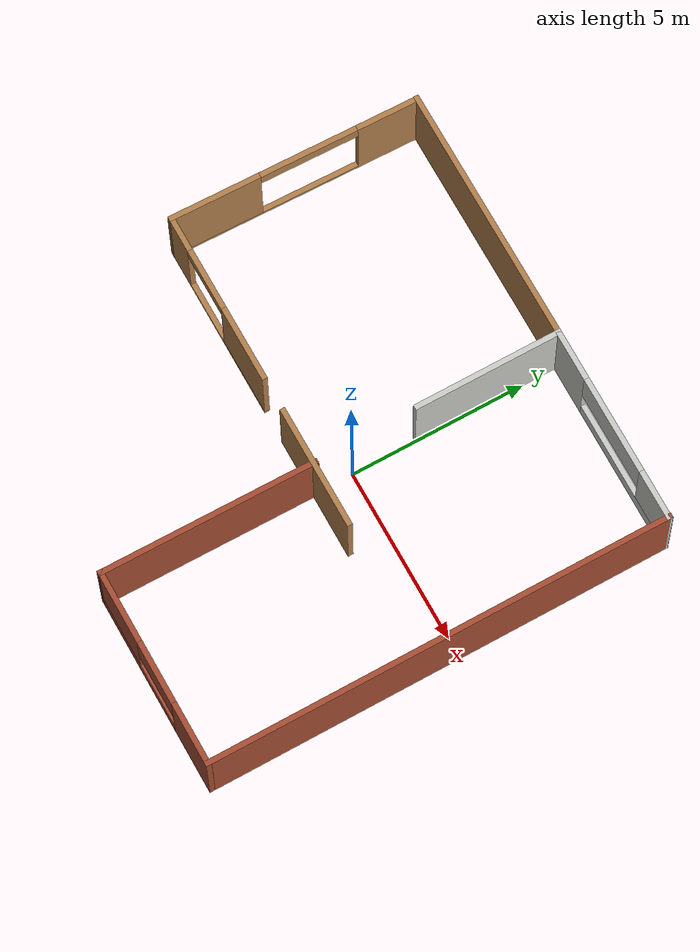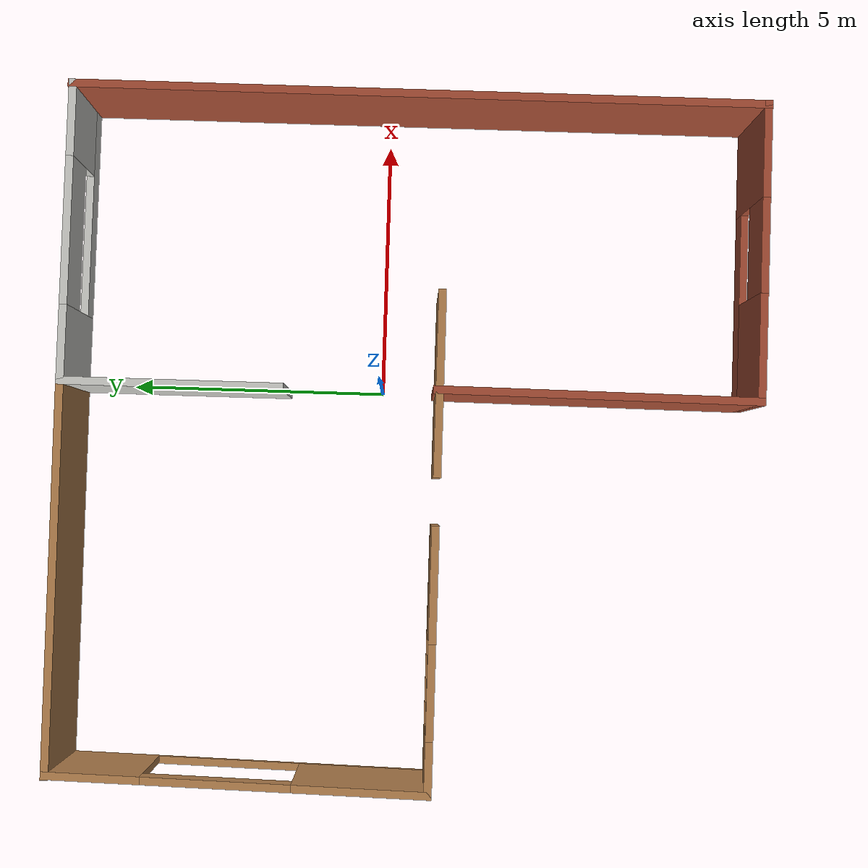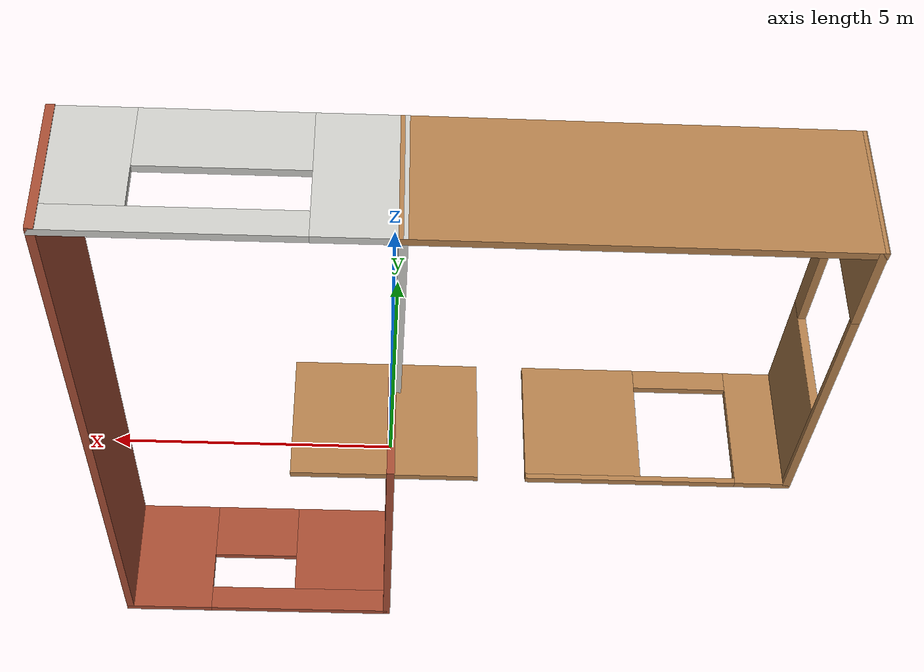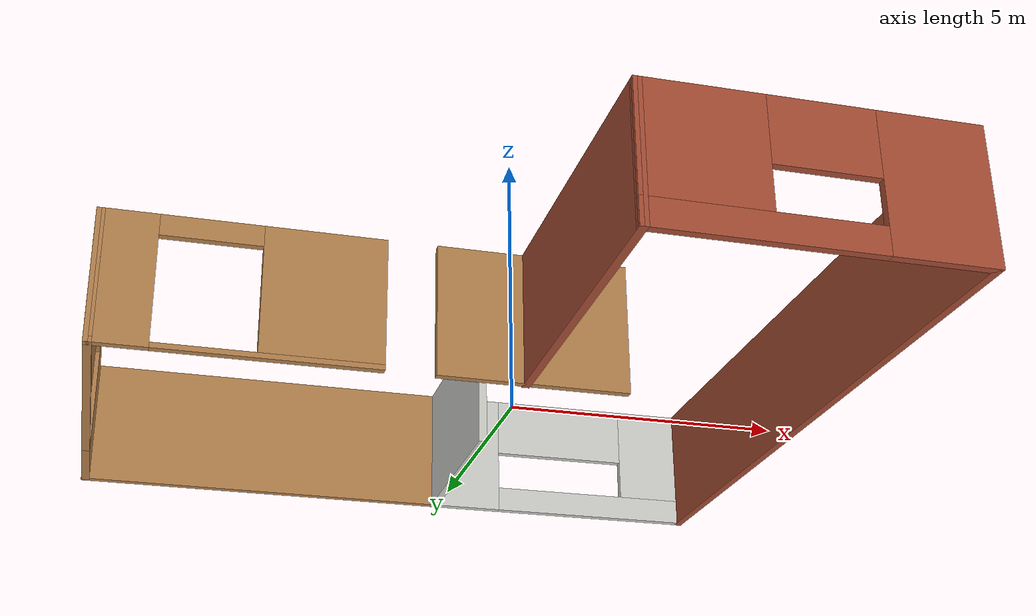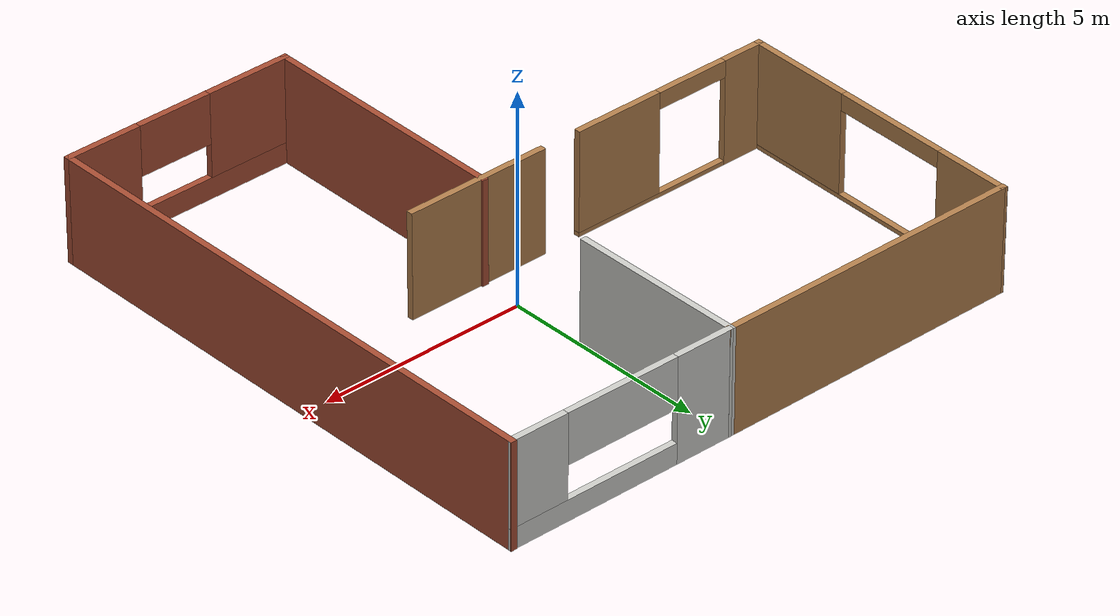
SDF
<?xml version='1.0'?>
<sdf version='1.6'>
  <model name='three_rooms'>
    <pose frame=''>-1.01044 -0.54871 0 0 -0 0</pose>
    <link name='Wall_1'>
      <collision name='Wall_1_Collision'>
        <geometry>
          <box>
            <size>7.5 0.15 2.5</size>
          </box>
        </geometry>
        <pose frame=''>0 0 1.25 0 -0 0</pose>
      </collision>
      <visual name='Wall_1_Visual'>
        <pose frame=''>0 0 1.25 0 -0 0</pose>
        <geometry>
          <box>
            <size>7.5 0.15 2.5</size>
          </box>
        </geometry>
        <material>
          <script>
            <uri>file://media/materials/scripts/gazebo.material</uri>
            <name>Gazebo/Wood</name>
          </script>
          <ambient>1 1 1 1</ambient>
        </material>
        <meta>
          <layer>0</layer>
        </meta>
      </visual>
      <pose frame=''>-2.72664 6.55831 0 0 -0 0</pose>
    </link>
    <link name='Wall_24'>
      <collision name='Wall_24_Collision'>
        <geometry>
          <box>
            <size>4.25 0.15 2.5</size>
          </box>
        </geometry>
        <pose frame=''>0 0 1.25 0 -0 0</pose>
      </collision>
      <visual name='Wall_24_Visual'>
        <pose frame=''>0 0 1.25 0 -0 0</pose>
        <geometry>
          <box>
            <size>4.25 0.15 2.5</size>
          </box>
        </geometry>
        <material>
          <script>
            <uri>file://media/materials/scripts/gazebo.material</uri>
            <name>Gazebo/CeilingTiled</name>
          </script>
          <ambient>1 1 1 1</ambient>
        </material>
        <meta>
          <layer>0</layer>
        </meta>
      </visual>
      <pose frame=''>0.948357 4.50831 0 0 0 -1.5708</pose>
    </link>
    <link name='Wall_26'>
      <pose frame=''>3.74836 6.54082 0 0 0 -0.006246</pose>
      <visual name='Wall_26_Visual_0'>
        <pose frame=''>-2.12556 0 1.25 0 -0 0</pose>
        <geometry>
          <box>
            <size>1.49888 0.15 2.5</size>
          </box>
        </geometry>
        <material>
          <script>
            <uri>file://media/materials/scripts/gazebo.material</uri>
            <name>Gazebo/CeilingTiled</name>
          </script>
          <ambient>1 1 1 1</ambient>
        </material>
        <meta>
          <layer>0</layer>
        </meta>
      </visual>
      <collision name='Wall_26_Collision_0'>
        <geometry>
          <box>
            <size>1.49888 0.15 2.5</size>
          </box>
        </geometry>
        <pose frame=''>-2.12556 0 1.25 0 -0 0</pose>
      </collision>
      <visual name='Wall_26_Visual_1'>
        <pose frame=''>0.74944 0 0.25 0 -0 0</pose>
        <geometry>
          <box>
            <size>4.25112 0.15 0.5</size>
          </box>
        </geometry>
        <material>
          <script>
            <uri>file://media/materials/scripts/gazebo.material</uri>
            <name>Gazebo/CeilingTiled</name>
          </script>
          <ambient>1 1 1 1</ambient>
        </material>
        <meta>
          <layer>0</layer>
        </meta>
      </visual>
      <collision name='Wall_26_Collision_1'>
        <geometry>
          <box>
            <size>4.25112 0.15 0.5</size>
          </box>
        </geometry>
        <pose frame=''>0.74944 0 0.25 0 -0 0</pose>
      </collision>
      <visual name='Wall_26_Visual_2'>
        <pose frame=''>2.14944 0 1.5 0 -0 0</pose>
        <geometry>
          <box>
            <size>1.45112 0.15 2</size>
          </box>
        </geometry>
        <material>
          <script>
            <uri>file://media/materials/scripts/gazebo.material</uri>
            <name>Gazebo/CeilingTiled</name>
          </script>
          <ambient>1 1 1 1</ambient>
        </material>
        <meta>
          <layer>0</layer>
        </meta>
      </visual>
      <collision name='Wall_26_Collision_2'>
        <geometry>
          <box>
            <size>1.45112 0.15 2</size>
          </box>
        </geometry>
        <pose frame=''>2.14944 0 1.5 0 -0 0</pose>
      </collision>
      <visual name='Wall_26_Visual_3'>
        <pose frame=''>0.023881 0 1.9 0 -0 0</pose>
        <geometry>
          <box>
            <size>2.8 0.15 1.2</size>
          </box>
        </geometry>
        <material>
          <script>
            <uri>file://media/materials/scripts/gazebo.material</uri>
            <name>Gazebo/CeilingTiled</name>
          </script>
          <ambient>1 1 1 1</ambient>
        </material>
        <meta>
          <layer>0</layer>
        </meta>
      </visual>
      <collision name='Wall_26_Collision_3'>
        <geometry>
          <box>
            <size>2.8 0.15 1.2</size>
          </box>
        </geometry>
        <pose frame=''>0.023881 0 1.9 0 -0 0</pose>
      </collision>
    </link>
    <link name='Wall_28'>
      <collision name='Wall_28_Collision'>
        <geometry>
          <box>
            <size>13.25 0.15 2.5</size>
          </box>
        </geometry>
        <pose frame=''>0 0 1.25 0 -0 0</pose>
      </collision>
      <visual name='Wall_28_Visual'>
        <pose frame=''>0 0 1.25 0 -0 0</pose>
        <geometry>
          <box>
            <size>13.25 0.15 2.5</size>
          </box>
        </geometry>
        <material>
          <script>
            <uri>file://media/materials/scripts/gazebo.material</uri>
            <name>Gazebo/Bricks</name>
          </script>
          <ambient>1 1 1 1</ambient>
        </material>
        <meta>
          <layer>0</layer>
        </meta>
      </visual>
      <pose frame=''>6.54836 -0.009179 0 0 0 -1.5708</pose>
    </link>
    <link name='Wall_3'>
      <pose frame=''>-6.46777 3.00831 0 0 0 -1.59315</pose>
      <visual name='Wall_3_Visual_0'>
        <pose frame=''>-2.70702 0 1.25 0 -0 0</pose>
        <geometry>
          <box>
            <size>1.83719 0.15 2.5</size>
          </box>
        </geometry>
        <material>
          <script>
            <uri>file://media/materials/scripts/gazebo.material</uri>
            <name>Gazebo/Wood</name>
          </script>
          <ambient>1 1 1 1</ambient>
        </material>
        <meta>
          <layer>0</layer>
        </meta>
      </visual>
      <collision name='Wall_3_Collision_0'>
        <geometry>
          <box>
            <size>1.83719 0.15 2.5</size>
          </box>
        </geometry>
        <pose frame=''>-2.70702 0 1.25 0 -0 0</pose>
      </collision>
      <visual name='Wall_3_Visual_1'>
        <pose frame=''>0.918596 0 0.05 0 -0 0</pose>
        <geometry>
          <box>
            <size>5.41404 0.15 0.1</size>
          </box>
        </geometry>
        <material>
          <script>
            <uri>file://media/materials/scripts/gazebo.material</uri>
            <name>Gazebo/Wood</name>
          </script>
          <ambient>1 1 1 1</ambient>
        </material>
        <meta>
          <layer>0</layer>
        </meta>
      </visual>
      <collision name='Wall_3_Collision_1'>
        <geometry>
          <box>
            <size>5.41404 0.15 0.1</size>
          </box>
        </geometry>
        <pose frame=''>0.918596 0 0.05 0 -0 0</pose>
      </collision>
      <visual name='Wall_3_Visual_2'>
        <pose frame=''>2.3186 0 1.3 0 -0 0</pose>
        <geometry>
          <box>
            <size>2.61404 0.15 2.4</size>
          </box>
        </geometry>
        <material>
          <script>
            <uri>file://media/materials/scripts/gazebo.material</uri>
            <name>Gazebo/Wood</name>
          </script>
          <ambient>1 1 1 1</ambient>
        </material>
        <meta>
          <layer>0</layer>
        </meta>
      </visual>
      <collision name='Wall_3_Collision_2'>
        <geometry>
          <box>
            <size>2.61404 0.15 2.4</size>
          </box>
        </geometry>
        <pose frame=''>2.3186 0 1.3 0 -0 0</pose>
      </collision>
      <visual name='Wall_3_Visual_3'>
        <pose frame=''>-0.388425 0 2.3 0 -0 0</pose>
        <geometry>
          <box>
            <size>2.8 0.15 0.4</size>
          </box>
        </geometry>
        <material>
          <script>
            <uri>file://media/materials/scripts/gazebo.material</uri>
            <name>Gazebo/Wood</name>
          </script>
          <ambient>1 1 1 1</ambient>
        </material>
        <meta>
          <layer>0</layer>
        </meta>
      </visual>
      <collision name='Wall_3_Collision_3'>
        <geometry>
          <box>
            <size>2.8 0.15 0.4</size>
          </box>
        </geometry>
        <pose frame=''>-0.388425 0 2.3 0 -0 0</pose>
      </collision>
    </link>
    <link name='Wall_30'>
      <pose frame=''>3.74836 -6.55918 0 0 -0 3.14159</pose>
      <visual name='Wall_30_Visual_0'>
        <pose frame=''>-1.95764 0 1.25 0 -0 0</pose>
        <geometry>
          <box>
            <size>1.83472 0.15 2.5</size>
          </box>
        </geometry>
        <material>
          <script>
            <uri>file://media/materials/scripts/gazebo.material</uri>
            <name>Gazebo/Bricks</name>
          </script>
          <ambient>1 1 1 1</ambient>
        </material>
        <meta>
          <layer>0</layer>
        </meta>
      </visual>
      <collision name='Wall_30_Collision_0'>
        <geometry>
          <box>
            <size>1.83472 0.15 2.5</size>
          </box>
        </geometry>
        <pose frame=''>-1.95764 0 1.25 0 -0 0</pose>
      </collision>
      <visual name='Wall_30_Visual_1'>
        <pose frame=''>0.91736 0 0.25 0 -0 0</pose>
        <geometry>
          <box>
            <size>3.91528 0.15 0.5</size>
          </box>
        </geometry>
        <material>
          <script>
            <uri>file://media/materials/scripts/gazebo.material</uri>
            <name>Gazebo/Bricks</name>
          </script>
          <ambient>1 1 1 1</ambient>
        </material>
        <meta>
          <layer>0</layer>
        </meta>
      </visual>
      <collision name='Wall_30_Collision_1'>
        <geometry>
          <box>
            <size>3.91528 0.15 0.5</size>
          </box>
        </geometry>
        <pose frame=''>0.91736 0 0.25 0 -0 0</pose>
      </collision>
      <visual name='Wall_30_Visual_2'>
        <pose frame=''>1.81736 0 1.5 0 -0 0</pose>
        <geometry>
          <box>
            <size>2.11528 0.15 2</size>
          </box>
        </geometry>
        <material>
          <script>
            <uri>file://media/materials/scripts/gazebo.material</uri>
            <name>Gazebo/Bricks</name>
          </script>
          <ambient>1 1 1 1</ambient>
        </material>
        <meta>
          <layer>0</layer>
        </meta>
      </visual>
      <collision name='Wall_30_Collision_2'>
        <geometry>
          <box>
            <size>2.11528 0.15 2</size>
          </box>
        </geometry>
        <pose frame=''>1.81736 0 1.5 0 -0 0</pose>
      </collision>
      <visual name='Wall_30_Visual_3'>
        <pose frame=''>-0.140281 0 1.9 0 -0 0</pose>
        <geometry>
          <box>
            <size>1.8 0.15 1.2</size>
          </box>
        </geometry>
        <material>
          <script>
            <uri>file://media/materials/scripts/gazebo.material</uri>
            <name>Gazebo/Bricks</name>
          </script>
          <ambient>1 1 1 1</ambient>
        </material>
        <meta>
          <layer>0</layer>
        </meta>
      </visual>
      <collision name='Wall_30_Collision_3'>
        <geometry>
          <box>
            <size>1.8 0.15 1.2</size>
          </box>
        </geometry>
        <pose frame=''>-0.140281 0 1.9 0 -0 0</pose>
      </collision>
    </link>
    <link name='Wall_34'>
      <collision name='Wall_34_Collision'>
        <geometry>
          <box>
            <size>6.21222 0.15 2.5</size>
          </box>
        </geometry>
        <pose frame=''>0 0 1.25 0 -0 0</pose>
      </collision>
      <visual name='Wall_34_Visual'>
        <pose frame=''>0 0 1.25 0 -0 0</pose>
        <geometry>
          <box>
            <size>6.21222 0.15 2.5</size>
          </box>
        </geometry>
        <material>
          <script>
            <uri>file://media/materials/scripts/gazebo.material</uri>
            <name>Gazebo/Bricks</name>
          </script>
          <ambient>1 1 1 1</ambient>
        </material>
        <meta>
          <layer>0</layer>
        </meta>
      </visual>
      <pose frame=''>0.969344 -3.52814 0 0 0 -1.57772</pose>
    </link>
    <link name='Wall_5'>
      <pose frame=''>-1.87212 -0.541689 0 0 -0 0</pose>
      <visual name='Wall_5_Visual_0'>
        <pose frame=''>-4.21273 0 1.25 0 -0 0</pose>
        <geometry>
          <box>
            <size>1.07454 0.15 2.5</size>
          </box>
        </geometry>
        <material>
          <script>
            <uri>file://media/materials/scripts/gazebo.material</uri>
            <name>Gazebo/Wood</name>
          </script>
          <ambient>1 1 1 1</ambient>
        </material>
        <meta>
          <layer>0</layer>
        </meta>
      </visual>
      <collision name='Wall_5_Collision_0'>
        <geometry>
          <box>
            <size>1.07454 0.15 2.5</size>
          </box>
        </geometry>
        <pose frame=''>-4.21273 0 1.25 0 -0 0</pose>
      </collision>
      <visual name='Wall_5_Visual_1'>
        <pose frame=''>2.98235 0 1.25 0 -0 0</pose>
        <geometry>
          <box>
            <size>3.5353 0.15 2.5</size>
          </box>
        </geometry>
        <material>
          <script>
            <uri>file://media/materials/scripts/gazebo.material</uri>
            <name>Gazebo/Wood</name>
          </script>
          <ambient>1 1 1 1</ambient>
        </material>
        <meta>
          <layer>0</layer>
        </meta>
      </visual>
      <collision name='Wall_5_Collision_1'>
        <geometry>
          <box>
            <size>3.5353 0.15 2.5</size>
          </box>
        </geometry>
        <pose frame=''>2.98235 0 1.25 0 -0 0</pose>
      </collision>
      <visual name='Wall_5_Visual_2'>
        <pose frame=''>-1.68038 0 0.05 0 -0 0</pose>
        <geometry>
          <box>
            <size>3.99016 0.15 0.1</size>
          </box>
        </geometry>
        <material>
          <script>
            <uri>file://media/materials/scripts/gazebo.material</uri>
            <name>Gazebo/Wood</name>
          </script>
          <ambient>1 1 1 1</ambient>
        </material>
        <meta>
          <layer>0</layer>
        </meta>
      </visual>
      <collision name='Wall_5_Collision_2'>
        <geometry>
          <box>
            <size>3.99016 0.15 0.1</size>
          </box>
        </geometry>
        <pose frame=''>-1.68038 0 0.05 0 -0 0</pose>
      </collision>
      <visual name='Wall_5_Visual_3'>
        <pose frame=''>-0.780377 0 1.3 0 -0 0</pose>
        <geometry>
          <box>
            <size>2.19016 0.15 2.4</size>
          </box>
        </geometry>
        <material>
          <script>
            <uri>file://media/materials/scripts/gazebo.material</uri>
            <name>Gazebo/Wood</name>
          </script>
          <ambient>1 1 1 1</ambient>
        </material>
        <meta>
          <layer>0</layer>
        </meta>
      </visual>
      <collision name='Wall_5_Collision_3'>
        <geometry>
          <box>
            <size>2.19016 0.15 2.4</size>
          </box>
        </geometry>
        <pose frame=''>-0.780377 0 1.3 0 -0 0</pose>
      </collision>
      <visual name='Wall_5_Visual_4'>
        <pose frame=''>-2.77546 0 2.3 0 -0 0</pose>
        <geometry>
          <box>
            <size>1.8 0.15 0.4</size>
          </box>
        </geometry>
        <material>
          <script>
            <uri>file://media/materials/scripts/gazebo.material</uri>
            <name>Gazebo/Wood</name>
          </script>
          <ambient>1 1 1 1</ambient>
        </material>
        <meta>
          <layer>0</layer>
        </meta>
      </visual>
      <collision name='Wall_5_Collision_4'>
        <geometry>
          <box>
            <size>1.8 0.15 0.4</size>
          </box>
        </geometry>
        <pose frame=''>-2.77546 0 2.3 0 -0 0</pose>
      </collision>
    </link>
    <static>1</static>
  </model>
</sdf>
